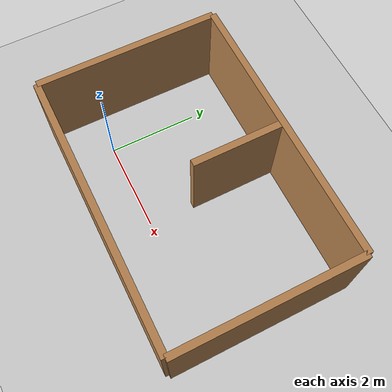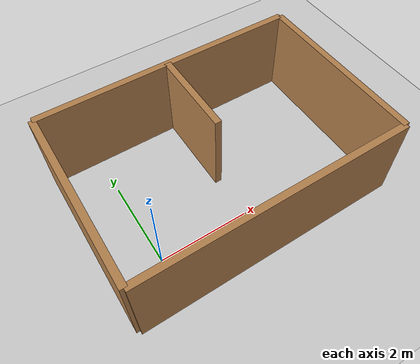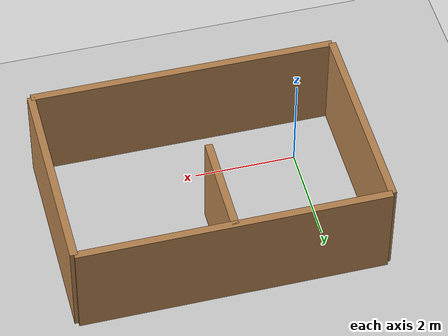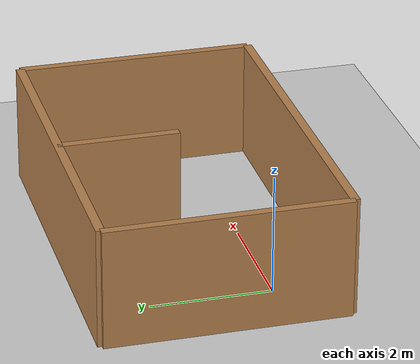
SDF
<?xml version="1.0" ?>
<sdf version="1.4">
  <!-- We use a custom world for the rrbot so that the camera angle is launched correctly -->

  <world name="default">

  <gravity>0 0 -9.81</gravity>

  <model name="ground_plane">
    <static>true</static>
    <link name="link">
      <collision name="collision">
        <geometry>
          <plane>
            <normal>0 0 1</normal>
            <size>100 100</size>
          </plane>
        </geometry>
        <surface>
          <friction>
            <ode>
              <mu>1</mu>
              <mu2>1</mu2>
            </ode>
          </friction>
        </surface>
      </collision>
      <visual name="visual">
        <cast_shadows>false</cast_shadows>
        <geometry>
          <plane>
            <normal>0 0 1</normal>
            <size>100 100</size>
          </plane>
        </geometry>
        <material>
          <script>
            <uri>file://media/materials/scripts/gazebo.material</uri>
            <name>Gazebo/Grey</name>
          </script>
        </material>
      </visual>
    </link>
  </model>

  <!-- wall -->
  <model name='wall'>
      <pose frame=''>0 1 1 0 0 0</pose>
      <link name='Wall_1'>
        <collision name='Wall_1_Collision'>
          <pose frame=''>2 2 0 0 0 0</pose>
          <geometry>
            <box>
              <size>6 0.15 2</size>
            </box>
          </geometry>
          <max_contacts>10</max_contacts>
          <surface>
            <contact>
              <ode/>
            </contact>
            <bounce/>
            <friction>
              <torsional>
                <ode/>
              </torsional>
              <ode/>
            </friction>
          </surface>
        </collision>
        <visual name='Wall_1_Visual'>
          <pose frame=''>2 2 0 0 0 0</pose>
          <geometry>
            <box>
              <size>6 0.15 2</size>
            </box>
          </geometry>
          <material>
            <script>
              <uri>file://media/materials/scripts/gazebo.material</uri>
              <name>Gazebo/Wood</name>
            </script>
            <ambient>1 1 1 1</ambient>
          </material>
          <meta>
            <layer>0</layer>
          </meta>
        </visual>
        <self_collide>0</self_collide>
        <kinematic>0</kinematic>
      </link>

      <link name='Wall_2'>
        <collision name='Wall_2_Collision'>
          <pose frame=''>2 -2 0 0 0 0</pose>
          <geometry>
            <box>
              <size>6 0.15 2</size>
            </box>
          </geometry>
          <max_contacts>10</max_contacts>
          <surface>
            <contact>
              <ode/>
            </contact>
            <bounce/>
            <friction>
              <torsional>
                <ode/>
              </torsional>
              <ode/>
            </friction>
          </surface>
        </collision>
        <visual name='Wall_2_Visual'>
          <pose frame=''>2 -2 0 0 0 0</pose>
          <geometry>
            <box>
              <size>6 0.15 2</size>
            </box>
          </geometry>
          <material>
            <script>
              <uri>file://media/materials/scripts/gazebo.material</uri>
              <name>Gazebo/Wood</name>
            </script>
            <ambient>1 1 1 1</ambient>
          </material>
          <meta>
            <layer>0</layer>
          </meta>
        </visual>
        <self_collide>0</self_collide>
        <kinematic>0</kinematic>
      </link>

      <link name='Wall_3'>
        <collision name='Wall_3_Collision'>
        <pose frame=''>5 0 0 0 0 0</pose>
          <geometry>
            <box>
              <size>0.15 4 2</size>
            </box>
          </geometry>
          <max_contacts>10</max_contacts>
          <surface>
            <contact>
              <ode/>
            </contact>
            <bounce/>
            <friction>
              <torsional>
                <ode/>
              </torsional>
              <ode/>
            </friction>
          </surface>
        </collision>
        <visual name='Wall_3_Visual'>
        <pose frame=''>5 0 0 0 0 0</pose>
          <geometry>
            <box>
              <size>0.15 4 2</size>
            </box>
          </geometry>
          <material>
            <script>
              <uri>file://media/materials/scripts/gazebo.material</uri>
              <name>Gazebo/Wood</name>
            </script>
            <ambient>1 1 1 1</ambient>
          </material>
          <meta>
            <layer>0</layer>
          </meta>
        </visual>
        <self_collide>0</self_collide>
        <kinematic>0</kinematic>
      </link>

      <link name='Wall_4'>
        <collision name='Wall_4_Collision'>
        <pose frame=''>-1 0 0 0 0 0</pose>
          <geometry>
            <box>
              <size>0.15 4 2</size>
            </box>
          </geometry>
          <max_contacts>10</max_contacts>
          <surface>
            <contact>
              <ode/>
            </contact>
            <bounce/>
            <friction>
              <torsional>
                <ode/>
              </torsional>
              <ode/>
            </friction>
          </surface>
        </collision>
        <visual name='Wall_4_Visual'>
        <pose frame=''>-1 0 0 0 0 0</pose>
          <geometry>
            <box>
              <size>0.15 4 2</size>
            </box>
          </geometry>
          <material>
            <script>
              <uri>file://media/materials/scripts/gazebo.material</uri>
              <name>Gazebo/Wood</name>
            </script>
            <ambient>1 1 1 1</ambient>
          </material>
          <meta>
            <layer>0</layer>
          </meta>
        </visual>
        <self_collide>0</self_collide>
        <kinematic>0</kinematic>
      </link>

      <link name='Wall_5'>
        <collision name='Wall_5_Collision'>
        <pose frame=''>2 1 0 0 0 0</pose>
          <geometry>
            <box>
              <size>0.15 2 2</size>
            </box>
          </geometry>
          <max_contacts>10</max_contacts>
          <surface>
            <contact>
              <ode/>
            </contact>
            <bounce/>
            <friction>
              <torsional>
                <ode/>
              </torsional>
              <ode/>
            </friction>
          </surface>
        </collision>
        <visual name='Wall_5_Visual'>
        <pose frame=''>2 1 0 0 0 0</pose>
          <geometry>
            <box>
              <size>0.15 2 2</size>
            </box>
          </geometry>
          <material>
            <script>
              <uri>file://media/materials/scripts/gazebo.material</uri>
              <name>Gazebo/Wood</name>
            </script>
            <ambient>1 1 1 1</ambient>
          </material>
          <meta>
            <layer>0</layer>
          </meta>
        </visual>
        <self_collide>0</self_collide>
        <kinematic>0</kinematic>
      </link>

      <static>1</static>
    </model>

    <!-- Global light source -->
    <include>
      <uri>model://sun</uri>
    </include>

    <!-- Focus camera on tall pendulum -->
    <gui fullscreen='0'>
      <camera name='user_camera'>
        <pose>4.927360 -4.376610 3.740080 0.000000 0.275643 2.356190</pose>
        <view_controller>orbit</view_controller>
      </camera>
    </gui>

    <physics name="update_rate" type="ode">
      <real_time_update_rate>4000</real_time_update_rate>
      <max_step_size>0.00025</max_step_size>
      <max_contacts>5</max_contacts>
      <bullet>
	<solver>
          <iters>100</iters>
          <sor>1.55</sor>
        </solver>
        <constraints>
          <contact_surface_layer>0.2</contact_surface_layer>
          <cfm>0.005</cfm>
          <erp>0.2</erp>
        </constraints>
      </bullet>
      <ode>
	<solver>
          <type>quick</type>
          <iters>50</iters>
          <sor>1.20</sor>
        </solver>
        <constraints>
          <contact_surface_layer>0.0002</contact_surface_layer>
          <contact_max_correcting_vel>500</contact_max_correcting_vel>
          <cfm>0.000001</cfm>
          <erp>0.3</erp>
        </constraints>
      </ode>
    </physics>

  </world>
</sdf>
